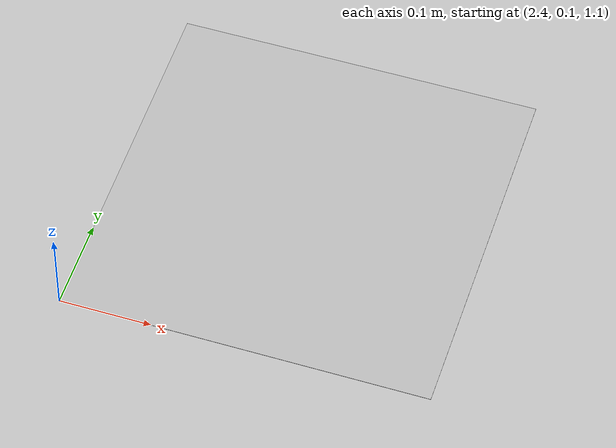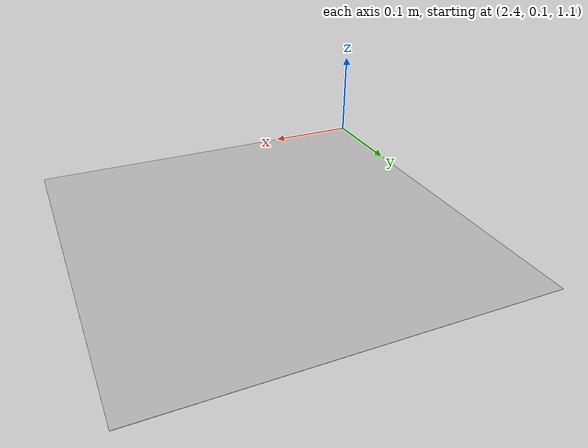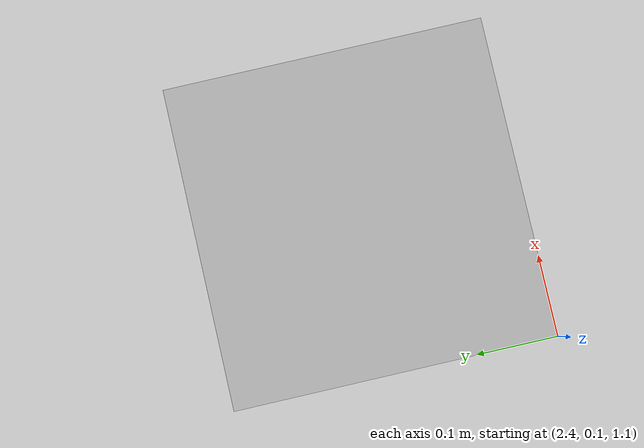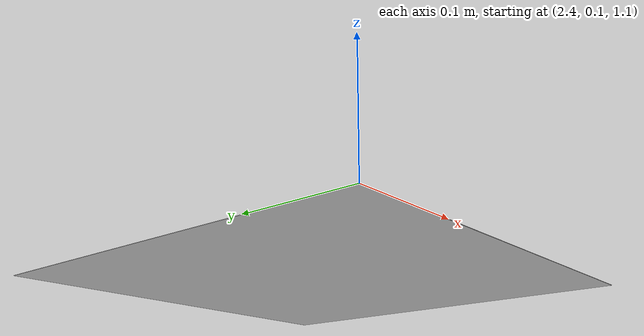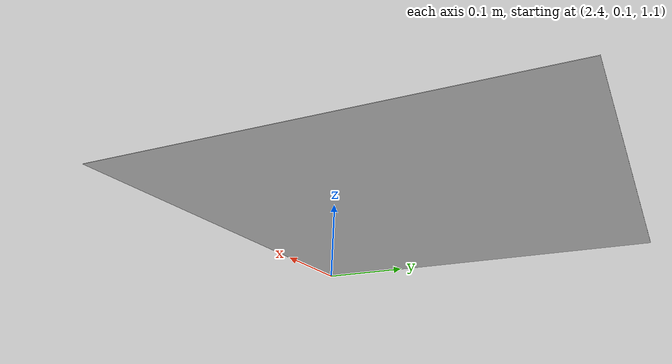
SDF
<?xml version="1.0" ?>
<sdf version="1.6">
  <model name="kitchen">
    <static>true</static>

    <link name="qr_link">

      <!-- Position: x y z -->
      <pose>2.6 0.3 1.1 0 0 0</pose>

      <visual name="qr_visual">
        <geometry>
          <plane>
            <size>0.4 0.4</size>
          </plane>
        </geometry>

        <material>
          <script>
            <uri>model://kitchen/materials/textures</uri>
            <name>KitchenQR</name>
          </script>
        </material>
      </visual>

      <collision name="qr_collision">
        <geometry>
          <plane>
            <size>0.4 0.4</size>
          </plane>
        </geometry>
      </collision>

    </link>
  </model>
</sdf>
